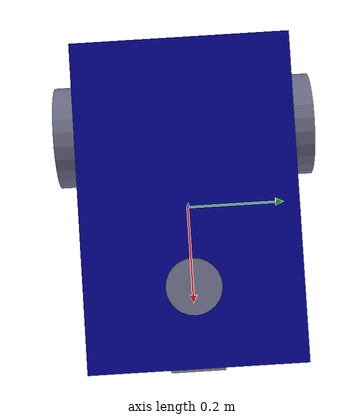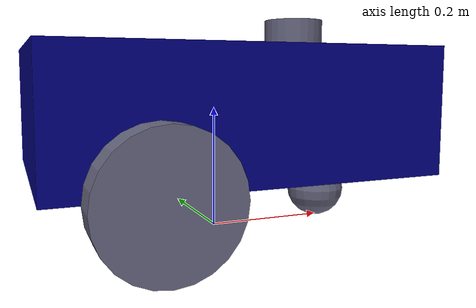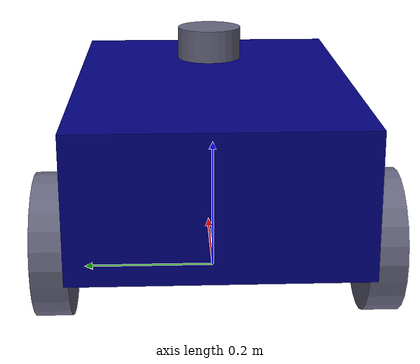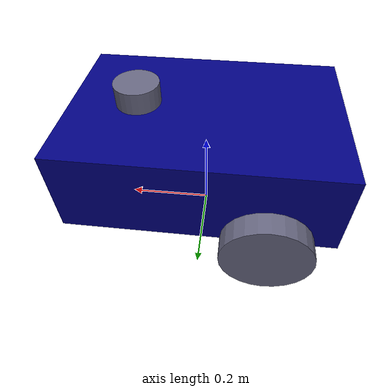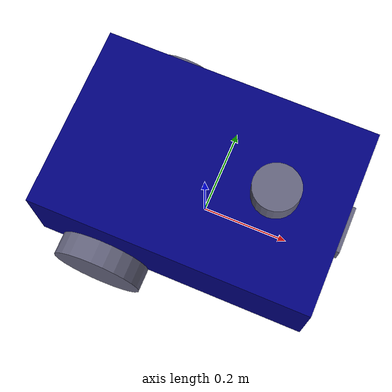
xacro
<?xml version="1.0"?>
<robot name="robot_2wd" xmlns:xacro="http://www.ros.org/wiki/xacro">
    <xacro:include filename="$(find core_description)/urdf/robot_2wd/modules/common_properties.xacro" />
    <xacro:include filename="$(find core_description)/urdf/robot_2wd/modules/robot_2wd.xacro" />
    <xacro:include filename="$(find core_description)/urdf/robot_2wd/modules/robot_2wd.gazebo.xacro" />
    <xacro:include filename="$(find core_description)/urdf/robot_2wd/modules/camera.xacro" />
    <xacro:include filename="$(find core_description)/urdf/robot_2wd/modules/lidar.xacro" />
</robot>

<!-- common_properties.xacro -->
<robot xmlns:xacro="http://www.ros.org/wiki/xacro">

    <material name="blue">
        <color rgba="0 0 0.5 1" />
    </material>
    <material name="grey">
        <color rgba="0.4 0.4 0.5 1" />
    </material>

    <xacro:macro name="wheel_link" params="wheel">
        <link name="${wheel}_wheel_link">
            <visual>
                <geometry>
                    <cylinder radius="${wheel_radius}" length="${wheel_width}" />
                </geometry>
                <origin xyz="0 0 0" rpy="${pi / 2} 0 0" />
                <material name="grey" />
            </visual>

            <collision>
                <geometry>
                    <sphere radius="${wheel_radius}" />
                </geometry>
                <origin xyz="0 0 0" rpy="${pi / 2} 0 0" />
            </collision>

            <xacro:cylinder_inertia m="1.0"
                                    r="${wheel_radius}" h="${wheel_width}"
                                    o_xyz="0 0 0" o_rpy="${pi / 2} 0 0" />
        </link>
    </xacro:macro>

    <!-- refer https://en.wikipedia.org/wiki/List_of_moments_of_inertia#:~:text=%CE%A3%29-,List%20of%203D%20inertia%20tensors
    for moment of inertia of different shapes -->
    <xacro:macro name="box_inertia" params="m x y z o_xyz o_rpy">
        <inertial>
            <mass value="${m}" />
            <origin xyz="${o_xyz}" rpy="${o_rpy}" />
            <inertia ixx="${(1.0/12.0) * m * (y*y + z*z)}" ixy="0" ixz="0"
                     iyy="${(1.0/12.0) * m * (x*x + z*z)}" iyz="0"
                     izz="${(1.0/12.0) * m * (x*x + y*y)}" />
        </inertial>
    </xacro:macro>

    <xacro:macro name="cylinder_inertia" params="m r h o_xyz o_rpy">
        <inertial>
            <mass value="${m}"/>
            <origin xyz="${o_xyz}" rpy="${o_rpy}"/>
            <inertia
                ixx="${(1.0/12.0) * m * (3 * r*r + h*h)}" ixy="0" ixz="0"
                iyy="${(1.0/12.0) * m * (3 * r*r + h*h)}" iyz="0"
                izz="${(1.0/2.0) * m * (r*r)}" />
        </inertial>
    </xacro:macro>

    <xacro:macro name="sphere_inertia" params="m r o_xyz o_rpy">
        <inertial>
            <mass value="${m}" />
            <origin xyz="${o_xyz}" rpy="${o_rpy}" />
            <inertia
                ixx="${(2.0/5.0) * m * (r*r)}" ixy="0" ixz="0"
                iyy="${(2.0/5.0) * m * (r*r)}" iyz="0"
                izz="${(2.0/5.0) * m * (r*r)}" />
        </inertial>
    </xacro:macro>

</robot>

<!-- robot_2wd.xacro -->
<robot name="robot_2wd" xmlns:xacro="http://www.ros.org/wiki/xacro">

    <xacro:property name="base_footprint_to_chassis_z" value="0.1"/>
    <xacro:property name="base_length" value="0.6" />
    <xacro:property name="base_width" value="0.4" />
    <xacro:property name="base_height" value="0.2" />
    <xacro:property name="wheel_radius" value="0.1" />
    <xacro:property name="wheel_width" value="0.05" />
    <xacro:property name="caster_radius" value="0.05" />

    <link name="base_footprint" />

    <link name="base_link">
        <visual>
            <geometry>
                <box size="${base_length} ${base_width} ${base_height}" />
            </geometry>
            <origin xyz="0 0 ${base_height/2}" rpy="0 0 0" />
            <material name="blue" />
        </visual>

        <collision>
            <geometry>
                <box size="${base_length} ${base_width} ${base_height}" />
            </geometry>
            <origin xyz="0 0 ${base_height/2}" rpy="0 0 0" />
        </collision>

        <xacro:box_inertia m="5.0"
                           x="${base_length}" y="${base_width}" z="${base_height}"
                           o_xyz="0 0 ${base_height/2}" o_rpy="0 0 0" />
    </link>

    <xacro:wheel_link wheel="left"/>
    <xacro:wheel_link wheel="right"/>

    <link name="caster_wheel_link">
        <visual>
            <geometry>
                <sphere radius="${caster_radius}" />
            </geometry>
            <origin xyz="0 0 0" rpy="0 0 0" />
            <material name="grey" />
        </visual>

        <collision>
            <geometry>
                <sphere radius="${caster_radius}" />
            </geometry>
            <origin xyz="0 0 0" rpy="0 0 0" />
        </collision>

        <xacro:sphere_inertia m="0.5" r="${caster_radius}" o_xyz="0 0 0" o_rpy="0 0 0" />
    </link>

    <joint name="base_footprint_joint" type="fixed">
        <parent link="base_footprint" />
        <child link="base_link" />
        <origin xyz="0 0 ${base_footprint_to_chassis_z}" rpy="0 0 0" />
    </joint>

    <joint name="base_right_wheel_joint" type="continuous">
        <parent link="base_link" />
        <child link="right_wheel_link" />
        <origin xyz="-${base_length/4} -${base_width/2 + wheel_width/2} 0" rpy="0 0 0" />
        <axis xyz="0 1 0" />
    </joint>

    <joint name="base_left_wheel_joint" type="continuous">
        <parent link="base_link" />
        <child link="left_wheel_link" />
        <origin xyz="-${base_length/4} ${base_width/2 + wheel_width/2} 0" rpy="0 0 0" />
        <axis xyz="0 1 0" />
    </joint>

    <joint name="base_caster_wheel_joint" type="fixed">
        <parent link="base_link" />
        <child link="caster_wheel_link" />
        <origin xyz="${base_length/3} 0 -${caster_radius}" rpy="0 0 0" />
    </joint>
</robot>

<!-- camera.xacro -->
<robot xmlns:xacro="http://www.ros.org/wiki/xacro">

    <xacro:property name="camera_length" value="0.01" />
    <xacro:property name="camera_width" value="0.1" />
    <xacro:property name="camera_height" value="0.05" />

    <!-- Camera-->
    <link name="camera_link">
        <visual>
            <geometry>
                <box size="${camera_length} ${camera_width} ${camera_height}" />
            </geometry>
            <origin xyz="${camera_length/2.0} 0 0" rpy="0 0 0" />
            <material name="grey" />
        </visual>
        <collision>
            <geometry>
                <box size="${camera_length} ${camera_width} ${camera_height}" />
            </geometry>
            <origin xyz="${camera_length/2.0} 0 0" rpy="0 0 0" />
        </collision>
        <xacro:box_inertia m="0.1" x="${camera_length}" y="${camera_width}" z="${camera_height}" o_xyz="${camera_length/2.0} 0 0" o_rpy="0 0 0" />
    </link>

    <link name="camera_link_optical" />

    <joint name="camera_joint" type="fixed">
        <parent link="base_link" />
        <child link="camera_link" />
        <origin xyz="${base_length/2.0} 0 ${base_height/1.5}" rpy="0 0 0" />
    </joint>

    <joint name="camera_optical_joint" type="fixed">
        <origin xyz="0 0 0" rpy="${-pi/2} 0 ${-pi/2}"/>
        <parent link="camera_link"/>
        <child link="camera_link_optical"/>
    </joint>

    <gazebo reference="camera_link">
        <sensor name="camera" type="camera">
            <pose>0 0 0 0 0 0</pose>
            <topic>camera/image_raw</topic>
            <camera_info_topic>camera/camera_info</camera_info_topic>
            <gz_frame_id>camera_link_optical</gz_frame_id>
            <update_rate>20</update_rate>
            <always_on>1</always_on>
            <visualize>true</visualize>
            <camera>
                <horizontal_fov>1.3962634</horizontal_fov>
                <image>
                    <width>640</width>
                    <height>480</height>
                    <format>R8G8B8</format>
                </image>
                <clip>
                    <near>0.1</near>
                    <far>15</far>
                </clip>
                <noise>
                    <type>gaussian</type>
                    <mean>0.0</mean>
                    <stddev>0.007</stddev>
                </noise>
            </camera>
        </sensor>
    </gazebo>

</robot>

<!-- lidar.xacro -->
<robot xmlns:xacro="http://www.ros.org/wiki/xacro">
    <xacro:property name="lidar_height" value="0.05" />
    <xacro:property name="lidar_radius" value="0.05" />
    <!-- The physical lidar body -->
    <link name="scan_link">
        <visual>
            <geometry>
                <cylinder length="${lidar_height}" radius="${lidar_radius}" />
            </geometry>
            <!-- Offset visual so the bottom face sits on the joint -->
            <origin xyz="0 0 ${lidar_height/2}" rpy="0 0 0" />
            <material name="grey" />
        </visual>
        <collision>
            <geometry>
                <cylinder length="${lidar_height}" radius="${lidar_radius}" />
            </geometry>
            <origin xyz="0 0 ${lidar_height/2}" rpy="0 0 0" />
        </collision>
    </link>

    <!-- Joint mounting the physical body to the chassis -->
    <joint name="lidar_mount_joint" type="fixed">
        <parent link="base_link" />
        <child link="scan_link" />
        <!-- Placed exactly on the roof of the base_link -->
        <origin xyz="${base_length/4} 0 ${base_height}" rpy="0 0 0" />
    </joint>

    <!-- The fake link representing the optical center -->
    <link name="scan_optical_frame" />

    <!-- Joint placing the fake link at the mathematical center of the sensor -->
    <joint name="lidar_optical_joint" type="fixed">
        <parent link="scan_link" />
        <child link="scan_optical_frame" />
        <!-- Shifted up from the mount point to the center where lasers shoot -->
        <origin xyz="0 0 ${lidar_height/2}" rpy="0 0 0" />
    </joint>

    <!-- refer https://sdformat.org/spec/1.12/sensor/ for sensors -->
    <gazebo reference="scan_optical_frame">
        <sensor name="gpu_lidar" type="gpu_lidar">
            <pose relative_to='scan_optical_frame'>0 0 0 0 0 0</pose>
            <topic>scan</topic>
            <gz_frame_id>scan_optical_frame</gz_frame_id>
            <update_rate>10</update_rate>
            <ray>
                <scan>
                    <horizontal>
                        <samples>720</samples>
                        <resolution>1</resolution>
                        <min_angle>-3.14159</min_angle>
                        <max_angle>3.14159</max_angle>
                    </horizontal>
                    <vertical>
                        <samples>1</samples>
                        <resolution>0.01</resolution>
                        <min_angle>0</min_angle>
                        <max_angle>0</max_angle>
                    </vertical>
                </scan>
                <range>
                    <min>0.08</min>
                    <max>10.0</max>
                    <resolution>0.01</resolution>
                </range>
            </ray>
            <always_on>1</always_on>
            <visualize>true</visualize>
        </sensor>
    </gazebo>
</robot>
